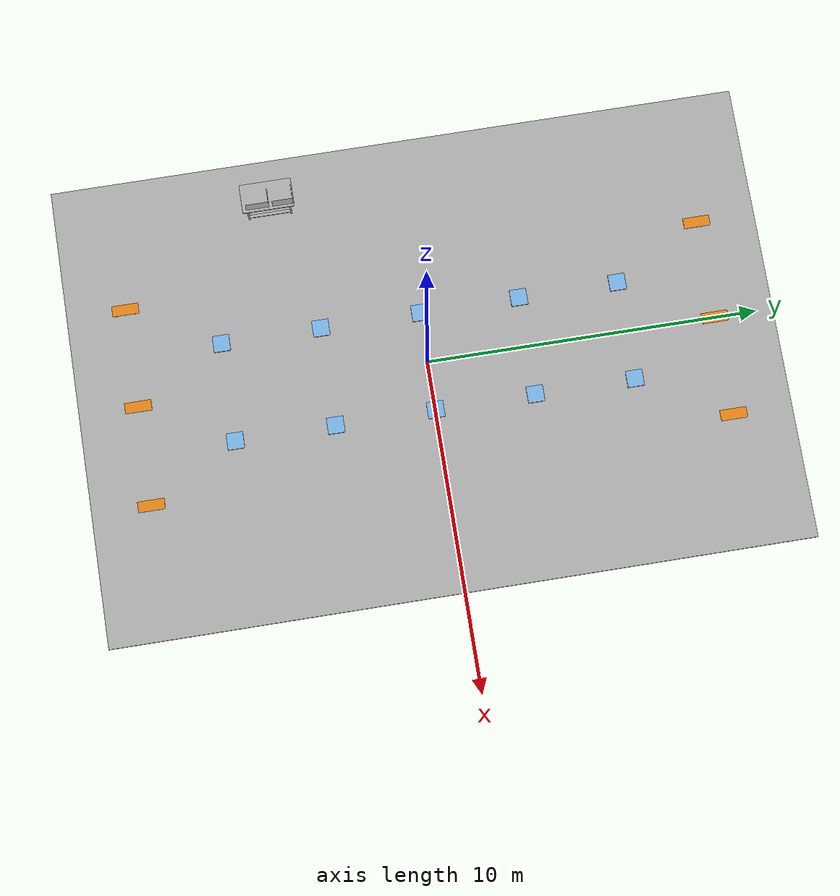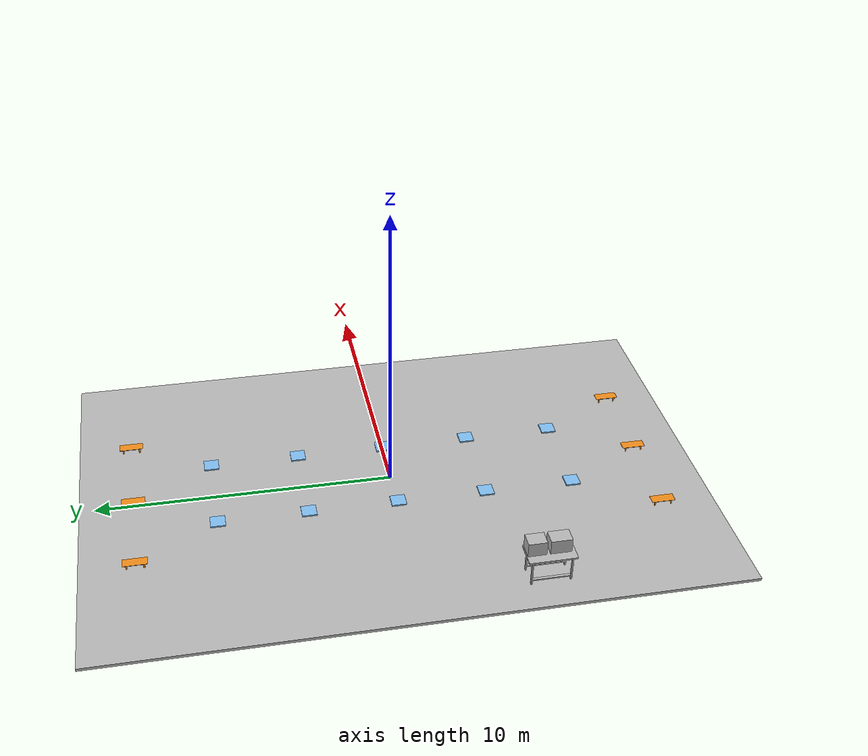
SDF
<sdf version="1.7">
 <world name="warehouse">
  <plugin name="model_attachment" filename="libwa_gazebo_model_attach_lib.so"/>
  <gravity>0 0 -9.8</gravity>
  <physics name="warehouse_physics" default="0" type="ode">
   <max_step_size>0.001</max_step_size>
   <real_time_factor>1</real_time_factor>
   <real_time_update_rate>1000</real_time_update_rate>
  </physics>
  <light name="Warehouse_CeilingLight_003" type="point">
   <pose>0 0 9 0 -0 0</pose>
   <diffuse>0.5 0.5 0.5 1</diffuse>
   <specular>0.2 0.2 0.2 1</specular>
   <attenuation>
    <range>80</range>
    <constant>0.05</constant>
    <linear>0.005</linear>
    <quadratic>0.0002</quadratic>
   </attenuation>
   <cast_shadows>0</cast_shadows>
   <direction>0.1 0.1 -1</direction>
   <spot><inner_angle>0</inner_angle><outer_angle>0</outer_angle><falloff>0</falloff></spot>
  </light>
  <magnetic_field>6e-06 2.3e-05 -4.2e-05</magnetic_field>
  <atmosphere type="adiabatic"/>
  <scene>
   <ambient>0.4 0.4 0.4 1</ambient>
   <background>0.7 0.7 0.7 1</background>
   <shadows>1</shadows>
   <grid>0</grid>
  </scene>
  <audio><device>default</device></audio>
  <spherical_coordinates>
   <surface_model>EARTH_WGS84</surface_model>
   <latitude_deg>0</latitude_deg>
   <longitude_deg>0</longitude_deg>
   <elevation>0</elevation>
   <heading_deg>0</heading_deg>
  </spherical_coordinates>
  <model name="aws_robomaker_warehouse_DeskC_01">
   <link name="link">
    <inertial>
     <mass>1</mass>
     <inertia><ixx>0.608</ixx><ixy>0</ixy><ixz>0</ixz><iyy>0.476</iyy><iyz>0</iyz><izz>0.542</izz></inertia>
    </inertial>
    <collision name="collision">
     <geometry>
      <mesh>
       <uri>model://aws_robomaker_warehouse_DeskC_01/meshes/aws_robomaker_warehouse_DeskC_01_collision.DAE</uri>
       <scale>1 1 1</scale>
      </mesh>
     </geometry>
     <surface>
      <friction><ode><mu>0.3</mu><mu2>0.3</mu2><fdir1>0 0 0</fdir1><slip1>0</slip1><slip2>0</slip2></ode></friction>
     </surface>
    </collision>
    <visual name="visual">
     <geometry>
      <mesh>
       <uri>model://aws_robomaker_warehouse_DeskC_01/meshes/aws_robomaker_warehouse_DeskC_01_visual.DAE</uri>
      </mesh>
     </geometry>
     <meta><layer>1</layer></meta>
    </visual>
   </link>
   <static>1</static>
   <pose>-5.60753 -3.99301 0 0 -0 0</pose>
  </model>
  <model name="storage_unit_4_0">
   <static>1</static>
   <pose>1.5 6 0.2 0 -0 0</pose>
   <link name="link">
    <inertial>
     <mass>1</mass>
     <inertia><ixx>0.021</ixx><ixy>0</ixy><ixz>0</ixz><iyy>0.021</iyy><iyz>0</iyz><izz>0.021</izz></inertia>
    </inertial>
    <collision name="collision"><geometry><box><size>0.5 0.5 0.05</size></box></geometry></collision>
    <visual name="visual">
     <geometry><box><size>0.5 0.5 0.05</size></box></geometry>
     <material>
      <script><name>Gazebo/SkyBlue</name><uri>file://media/materials/scripts/gazebo.material</uri></script>
     </material>
    </visual>
   </link>
   <link name="attacher_link"><pose relative_to="link">0 0 0.15 0 -0 0</pose></link>
   <joint name="attacher_joint" type="fixed">
    <parent>link</parent>
    <child>attacher_link</child>
    <pose relative_to="attacher_link">0 0 0 0 -0 0</pose>
   </joint>
  </model>
  <model name="storage_unit_2_0">
   <static>1</static>
   <pose>1.5 0 0.2 0 -0 0</pose>
   <link name="link">
    <inertial>
     <mass>1</mass>
     <inertia><ixx>0.021</ixx><ixy>0</ixy><ixz>0</ixz><iyy>0.021</iyy><iyz>0</iyz><izz>0.021</izz></inertia>
    </inertial>
    <collision name="collision"><geometry><box><size>0.5 0.5 0.05</size></box></geometry></collision>
    <visual name="visual">
     <geometry><box><size>0.5 0.5 0.05</size></box></geometry>
     <material>
      <script><name>Gazebo/SkyBlue</name><uri>file://media/materials/scripts/gazebo.material</uri></script>
     </material>
    </visual>
   </link>
   <link name="attacher_link"><pose relative_to="link">0 0 0.15 0 -0 0</pose></link>
   <joint name="attacher_joint" type="fixed">
    <parent>link</parent>
    <child>attacher_link</child>
    <pose relative_to="attacher_link">0 0 0 0 -0 0</pose>
   </joint>
  </model>
  <model name="storage_unit_1_0">
   <static>1</static>
   <pose>1.5 -3 0.2 0 -0 0</pose>
   <link name="link">
    <inertial>
     <mass>1</mass>
     <inertia><ixx>0.021</ixx><ixy>0</ixy><ixz>0</ixz><iyy>0.021</iyy><iyz>0</iyz><izz>0.021</izz></inertia>
    </inertial>
    <collision name="collision"><geometry><box><size>0.5 0.5 0.05</size></box></geometry></collision>
    <visual name="visual">
     <geometry><box><size>0.5 0.5 0.05</size></box></geometry>
     <material>
      <script><name>Gazebo/SkyBlue</name><uri>file://media/materials/scripts/gazebo.material</uri></script>
     </material>
    </visual>
   </link>
   <link name="attacher_link"><pose relative_to="link">0 0 0.15 0 -0 0</pose></link>
   <joint name="attacher_joint" type="fixed">
    <parent>link</parent>
    <child>attacher_link</child>
    <pose relative_to="attacher_link">0 0 0 0 -0 0</pose>
   </joint>
  </model>
  <model name="storage_unit_3_0">
   <static>1</static>
   <pose>1.5 3 0.2 0 -0 0</pose>
   <link name="link">
    <inertial>
     <mass>1</mass>
     <inertia><ixx>0.021</ixx><ixy>0</ixy><ixz>0</ixz><iyy>0.021</iyy><iyz>0</iyz><izz>0.021</izz></inertia>
    </inertial>
    <collision name="collision"><geometry><box><size>0.5 0.5 0.05</size></box></geometry></collision>
    <visual name="visual">
     <geometry><box><size>0.5 0.5 0.05</size></box></geometry>
     <material>
      <script><name>Gazebo/SkyBlue</name><uri>file://media/materials/scripts/gazebo.material</uri></script>
     </material>
    </visual>
   </link>
   <link name="attacher_link"><pose relative_to="link">0 0 0.15 0 -0 0</pose></link>
   <joint name="attacher_joint" type="fixed">
    <parent>link</parent>
    <child>attacher_link</child>
    <pose relative_to="attacher_link">0 0 0 0 -0 0</pose>
   </joint>
  </model>
  <model name="storage_unit_4_1">
   <static>1</static>
   <pose>-1.5 6 0.2 0 -0 0</pose>
   <link name="link">
    <inertial>
     <mass>1</mass>
     <inertia><ixx>0.021</ixx><ixy>0</ixy><ixz>0</ixz><iyy>0.021</iyy><iyz>0</iyz><izz>0.021</izz></inertia>
    </inertial>
    <collision name="collision"><geometry><box><size>0.5 0.5 0.05</size></box></geometry></collision>
    <visual name="visual">
     <geometry><box><size>0.5 0.5 0.05</size></box></geometry>
     <material>
      <script><name>Gazebo/SkyBlue</name><uri>file://media/materials/scripts/gazebo.material</uri></script>
     </material>
    </visual>
   </link>
   <link name="attacher_link"><pose relative_to="link">0 0 0.15 0 -0 0</pose></link>
   <joint name="attacher_joint" type="fixed">
    <parent>link</parent>
    <child>attacher_link</child>
    <pose relative_to="attacher_link">0 0 0 0 -0 0</pose>
   </joint>
  </model>
  <model name="storage_unit_3_1">
   <static>1</static>
   <pose>-1.5 3 0.2 0 -0 0</pose>
   <link name="link">
    <inertial>
     <mass>1</mass>
     <inertia><ixx>0.021</ixx><ixy>0</ixy><ixz>0</ixz><iyy>0.021</iyy><iyz>0</iyz><izz>0.021</izz></inertia>
    </inertial>
    <collision name="collision"><geometry><box><size>0.5 0.5 0.05</size></box></geometry></collision>
    <visual name="visual">
     <geometry><box><size>0.5 0.5 0.05</size></box></geometry>
     <material>
      <script><name>Gazebo/SkyBlue</name><uri>file://media/materials/scripts/gazebo.material</uri></script>
     </material>
    </visual>
   </link>
   <link name="attacher_link"><pose relative_to="link">0 0 0.15 0 -0 0</pose></link>
   <joint name="attacher_joint" type="fixed">
    <parent>link</parent>
    <child>attacher_link</child>
    <pose relative_to="attacher_link">0 0 0 0 -0 0</pose>
   </joint>
  </model>
  <model name="storage_unit_2_1">
   <static>1</static>
   <pose>-1.5 0 0.2 0 -0 0</pose>
   <link name="link">
    <inertial>
     <mass>1</mass>
     <inertia><ixx>0.021</ixx><ixy>0</ixy><ixz>0</ixz><iyy>0.021</iyy><iyz>0</iyz><izz>0.021</izz></inertia>
    </inertial>
    <collision name="collision"><geometry><box><size>0.5 0.5 0.05</size></box></geometry></collision>
    <visual name="visual">
     <geometry><box><size>0.5 0.5 0.05</size></box></geometry>
     <material>
      <script><name>Gazebo/SkyBlue</name><uri>file://media/materials/scripts/gazebo.material</uri></script>
     </material>
    </visual>
   </link>
   <link name="attacher_link"><pose relative_to="link">0 0 0.15 0 -0 0</pose></link>
   <joint name="attacher_joint" type="fixed">
    <parent>link</parent>
    <child>attacher_link</child>
    <pose relative_to="attacher_link">0 0 0 0 -0 0</pose>
   </joint>
  </model>
  <model name="storage_unit_1_1">
   <static>1</static>
   <pose>-1.5 -3 0.2 0 -0 0</pose>
   <link name="link">
    <inertial>
     <mass>1</mass>
     <inertia><ixx>0.021</ixx><ixy>0</ixy><ixz>0</ixz><iyy>0.021</iyy><iyz>0</iyz><izz>0.021</izz></inertia>
    </inertial>
    <collision name="collision"><geometry><box><size>0.5 0.5 0.05</size></box></geometry></collision>
    <visual name="visual">
     <geometry><box><size>0.5 0.5 0.05</size></box></geometry>
     <material>
      <script><name>Gazebo/SkyBlue</name><uri>file://media/materials/scripts/gazebo.material</uri></script>
     </material>
    </visual>
   </link>
   <link name="attacher_link"><pose relative_to="link">0 0 0.15 0 -0 0</pose></link>
   <joint name="attacher_joint" type="fixed">
    <parent>link</parent>
    <child>attacher_link</child>
    <pose relative_to="attacher_link">0 0 0 0 -0 0</pose>
   </joint>
  </model>
  <model name="storage_unit_0_1">
   <static>1</static>
   <pose>-1.5 -6 0.2 0 -0 0</pose>
   <link name="link">
    <inertial>
     <mass>1</mass>
     <inertia><ixx>0.021</ixx><ixy>0</ixy><ixz>0</ixz><iyy>0.021</iyy><iyz>0</iyz><izz>0.021</izz></inertia>
    </inertial>
    <collision name="collision"><geometry><box><size>0.5 0.5 0.05</size></box></geometry></collision>
    <visual name="visual">
     <geometry><box><size>0.5 0.5 0.05</size></box></geometry>
     <material>
      <script><name>Gazebo/SkyBlue</name><uri>file://media/materials/scripts/gazebo.material</uri></script>
     </material>
    </visual>
   </link>
   <link name="attacher_link"><pose relative_to="link">0 0 0.15 0 -0 0</pose></link>
   <joint name="attacher_joint" type="fixed">
    <parent>link</parent>
    <child>attacher_link</child>
    <pose relative_to="attacher_link">0 0 0 0 -0 0</pose>
   </joint>
  </model>
  <model name="storage_unit_0_0">
   <static>1</static>
   <pose>1.5 -6 0.2 0 -0 0</pose>
   <link name="link">
    <inertial>
     <mass>1</mass>
     <inertia><ixx>0.021</ixx><ixy>0</ixy><ixz>0</ixz><iyy>0.021</iyy><iyz>0</iyz><izz>0.021</izz></inertia>
    </inertial>
    <collision name="collision"><geometry><box><size>0.5 0.5 0.05</size></box></geometry></collision>
    <visual name="visual">
     <geometry><box><size>0.5 0.5 0.05</size></box></geometry>
     <material>
      <script><name>Gazebo/SkyBlue</name><uri>file://media/materials/scripts/gazebo.material</uri></script>
     </material>
    </visual>
   </link>
   <link name="attacher_link"><pose relative_to="link">0 0 0.15 0 -0 0</pose></link>
   <joint name="attacher_joint" type="fixed">
    <parent>link</parent>
    <child>attacher_link</child>
    <pose relative_to="attacher_link">0 0 0 0 -0 0</pose>
   </joint>
  </model>
  <model name="conveyor_belt_1_0">
   <static>1</static>
   <pose>3 8.7 0.035187 -0.004872 -0.000727 1.57079</pose>
   <link name="link">
    <collision name="collision">
     <geometry>
      <mesh><uri>model:///conveyor_belt/meshes/conveyor_belt.dae</uri><scale>0.05 0.05 0.05</scale></mesh>
     </geometry>
    </collision>
    <visual name="visual">
     <geometry>
      <mesh><uri>model://conveyor_belt/meshes/conveyor_belt.dae</uri><scale>0.05 0.05 0.05</scale></mesh>
     </geometry>
     <material>
      <script><uri>file://media/materials/scripts/gazebo.material</uri><name>Gazebo/Orange</name></script>
     </material>
    </visual>
    <inertial>
     <inertia><ixx>1</ixx><ixy>0</ixy><ixz>0</ixz><iyy>1</iyy><iyz>0</iyz><izz>1</izz></inertia>
     <mass>1</mass>
    </inertial>
   </link>
   <link name="attacher_link"><pose relative_to="link">0 -0.02 0.35 0 0 0</pose></link>
   <joint name="attacher_joint" type="fixed">
    <parent>link</parent>
    <child>attacher_link</child>
    <pose relative_to="attacher_link">0 0 0 0 0 0</pose>
   </joint>
  </model>
  <model name="conveyor_belt_1_1">
   <static>1</static>
   <pose>0 8.7 0.035194 -0.004868 -0.00073 1.57079</pose>
   <link name="link">
    <collision name="collision">
     <geometry>
      <mesh><uri>model:///conveyor_belt/meshes/conveyor_belt.dae</uri><scale>0.05 0.05 0.05</scale></mesh>
     </geometry>
    </collision>
    <visual name="visual">
     <geometry>
      <mesh><uri>model://conveyor_belt/meshes/conveyor_belt.dae</uri><scale>0.05 0.05 0.05</scale></mesh>
     </geometry>
     <material>
      <script><uri>file://media/materials/scripts/gazebo.material</uri><name>Gazebo/Orange</name></script>
     </material>
    </visual>
    <inertial>
     <inertia><ixx>1</ixx><ixy>0</ixy><ixz>0</ixz><iyy>1</iyy><iyz>0</iyz><izz>1</izz></inertia>
     <mass>1</mass>
    </inertial>
   </link>
   <link name="attacher_link"><pose relative_to="link">0 -0.02 0.35 0 0 0</pose></link>
   <joint name="attacher_joint" type="fixed">
    <parent>link</parent>
    <child>attacher_link</child>
    <pose relative_to="attacher_link">0 0 0 0 0 0</pose>
   </joint>
  </model>
  <model name="conveyor_belt_1_2">
   <static>1</static>
   <pose>-3 8.7 0.035195 -0.004857 -0.000729 1.57079</pose>
   <link name="link">
    <collision name="collision">
     <geometry>
      <mesh><uri>model:///conveyor_belt/meshes/conveyor_belt.dae</uri><scale>0.05 0.05 0.05</scale></mesh>
     </geometry>
    </collision>
    <visual name="visual">
     <geometry>
      <mesh><uri>model://conveyor_belt/meshes/conveyor_belt.dae</uri><scale>0.05 0.05 0.05</scale></mesh>
     </geometry>
     <material>
      <script><uri>file://media/materials/scripts/gazebo.material</uri><name>Gazebo/Orange</name></script>
     </material>
    </visual>
    <inertial>
     <inertia><ixx>1</ixx><ixy>0</ixy><ixz>0</ixz><iyy>1</iyy><iyz>0</iyz><izz>1</izz></inertia>
     <mass>1</mass>
    </inertial>
   </link>
   <link name="attacher_link"><pose relative_to="link">0 -0.02 0.35 0 0 0</pose></link>
   <joint name="attacher_joint" type="fixed">
    <parent>link</parent>
    <child>attacher_link</child>
    <pose relative_to="attacher_link">0 0 0 0 0 0</pose>
   </joint>
  </model>
  <model name="conveyor_belt_0_0">
   <static>1</static>
   <pose>3 -8.7 0.035194 -0.004866 -0.00073 1.57079</pose>
   <link name="link">
    <collision name="collision">
     <geometry>
      <mesh><uri>model:///conveyor_belt/meshes/conveyor_belt.dae</uri><scale>0.05 0.05 0.05</scale></mesh>
     </geometry>
    </collision>
    <visual name="visual">
     <geometry>
      <mesh><uri>model://conveyor_belt/meshes/conveyor_belt.dae</uri><scale>0.05 0.05 0.05</scale></mesh>
     </geometry>
     <material>
      <script><uri>file://media/materials/scripts/gazebo.material</uri><name>Gazebo/Orange</name></script>
     </material>
    </visual>
    <inertial>
     <inertia><ixx>1</ixx><ixy>0</ixy><ixz>0</ixz><iyy>1</iyy><iyz>0</iyz><izz>1</izz></inertia>
     <mass>1</mass>
    </inertial>
   </link>
   <link name="attacher_link"><pose relative_to="link">0 -0.02 0.35 0 0 0</pose></link>
   <joint name="attacher_joint" type="fixed">
    <parent>link</parent>
    <child>attacher_link</child>
    <pose relative_to="attacher_link">0 0 0 0 0 0</pose>
   </joint>
  </model>
  <model name="conveyor_belt_0_1">
   <static>1</static>
   <pose>0 -8.7 0.035184 -0.004867 -0.00073 1.57079</pose>
   <link name="link">
    <collision name="collision">
     <geometry>
      <mesh><uri>model:///conveyor_belt/meshes/conveyor_belt.dae</uri><scale>0.05 0.05 0.05</scale></mesh>
     </geometry>
    </collision>
    <visual name="visual">
     <geometry>
      <mesh><uri>model://conveyor_belt/meshes/conveyor_belt.dae</uri><scale>0.05 0.05 0.05</scale></mesh>
     </geometry>
     <material>
      <script><uri>file://media/materials/scripts/gazebo.material</uri><name>Gazebo/Orange</name></script>
     </material>
    </visual>
    <inertial>
     <inertia><ixx>1</ixx><ixy>0</ixy><ixz>0</ixz><iyy>1</iyy><iyz>0</iyz><izz>1</izz></inertia>
     <mass>1</mass>
    </inertial>
   </link>
   <link name="attacher_link"><pose relative_to="link">0 -0.02 0.35 0 0 0</pose></link>
   <joint name="attacher_joint" type="fixed">
    <parent>link</parent>
    <child>attacher_link</child>
    <pose relative_to="attacher_link">0 0 0 0 0 0</pose>
   </joint>
  </model>
  <model name="conveyor_belt_0_2">
   <static>1</static>
   <pose>-3 -8.7 0.035193 -0.00486 -0.000724 1.57079</pose>
   <link name="link">
    <collision name="collision">
     <geometry>
      <mesh><uri>model:///conveyor_belt/meshes/conveyor_belt.dae</uri><scale>0.05 0.05 0.05</scale></mesh>
     </geometry>
    </collision>
    <visual name="visual">
     <geometry>
      <mesh><uri>model://conveyor_belt/meshes/conveyor_belt.dae</uri><scale>0.05 0.05 0.05</scale></mesh>
     </geometry>
     <material>
      <script><uri>file://media/materials/scripts/gazebo.material</uri><name>Gazebo/Orange</name></script>
     </material>
    </visual>
    <inertial>
     <inertia><ixx>1</ixx><ixy>0</ixy><ixz>0</ixz><iyy>1</iyy><iyz>0</iyz><izz>1</izz></inertia>
     <mass>1</mass>
    </inertial>
   </link>
   <link name="attacher_link"><pose relative_to="link">0 -0.02 0.35 0 0 0</pose></link>
   <joint name="attacher_joint" type="fixed">
    <parent>link</parent>
    <child>attacher_link</child>
    <pose relative_to="attacher_link">0 0 0 0 0 0</pose>
   </joint>
  </model>
  <model name="warehouse_ground">
   <static>1</static>
   <pose>0 0 -0.05 0 -0 0</pose>
   <link name="link">
    <inertial>
     <mass>30</mass>
     <inertia><ixx>1000</ixx><ixy>0</ixy><ixz>0</ixz><iyy>490</iyy><iyz>0</iyz><izz>1490</izz></inertia>
    </inertial>
    <collision name="collision"><geometry><box><size>14 21 0.1</size></box></geometry></collision>
    <visual name="visual">
     <geometry><box><size>14 21 0.1</size></box></geometry>
     <material>
      <script>
       <name>WarehouseGround</name>
       <uri>model://warehouse_ground/materials/scripts/warehouse_ground.material</uri>
      </script>
     </material>
    </visual>
   </link>
  </model>
 </world>
</sdf>
